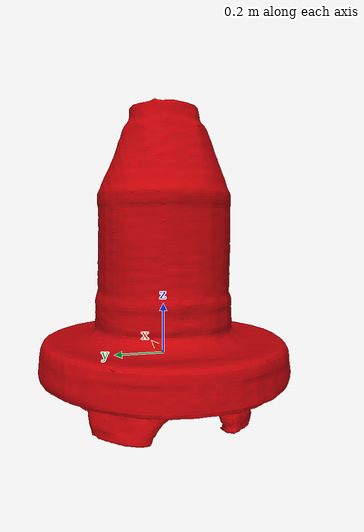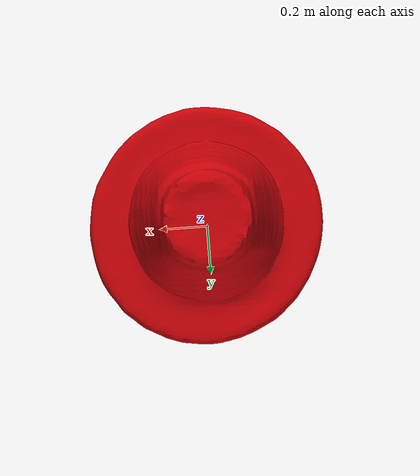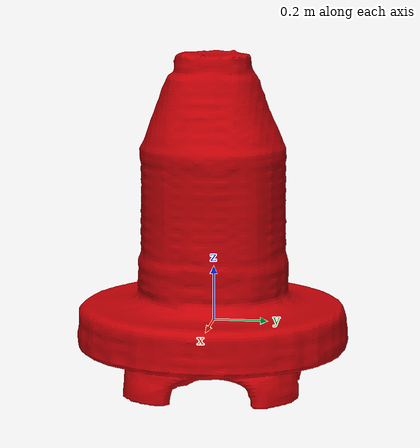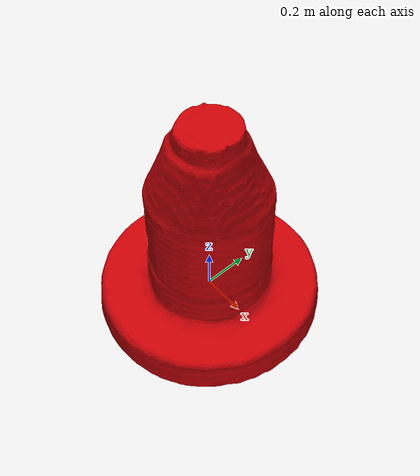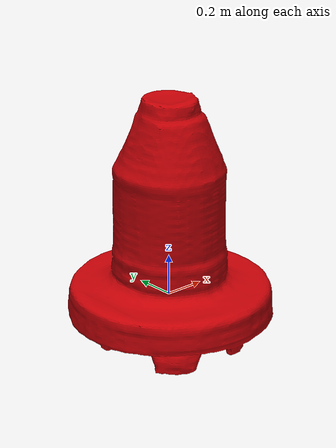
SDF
<?xml version="1.0" ?>
<sdf version="1.6">
    <model name="surmark_buoy_red">
        <plugin
            filename="wave-hydrodynamics-system"
            name="gz::sim::systems::Hydrodynamics">
        </plugin>
        <link name="base_link">
            <inertial>
                <pose>0 0 0 0 0 0</pose>
                <mass>18.15</mass>
                <inertia>
                    <ixx>2316</ixx>
                    <ixy>0</ixy>
                    <ixz>0</ixz>
                    <iyy>2316</iyy>
                    <iyz>0</iyz>
                    <izz>0.225</izz>
                </inertia>
            </inertial>
            <collision name="collision_inner">
                <pose>0 0 0.3637 0 0 0</pose>
                <geometry>
                    <cylinder>
                        <radius>0.15</radius>
                        <length>1.26</length>
                    </cylinder>
                </geometry>
            </collision>
            <collision name="collision_outer">
                <pose>0 0 -0.1117 0 0 0</pose>
                <geometry>
                    <cylinder>
                        <radius>0.24</radius>
                        <length>0.15</length>
                    </cylinder>
                </geometry>
            </collision>
            <visual name="visual">
                <pose>0 0 0 0 0 0</pose>
                <geometry>
                    <mesh>
                        <uri>meshes/surmark950410.dae</uri>
                        <scale>2 2 1</scale>
                    </mesh>
                </geometry>
                <material>
                    <ambient>0.7921 0.0039 0.0274</ambient>
                    <diffuse>0.7921 0.0039 0.0274</diffuse>
                    <specular>1 1 1 1</specular>
                </material>
            </visual>
        </link>
    </model>
</sdf>
